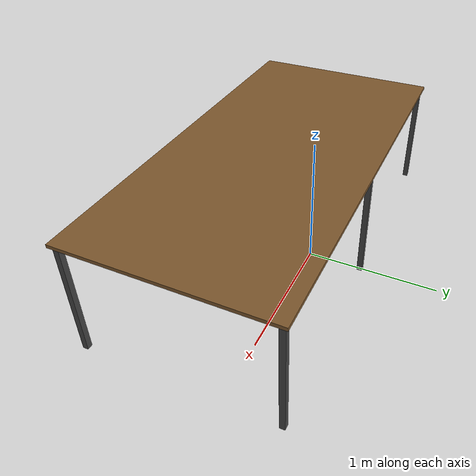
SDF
<?xml version="1.0" ?>
<sdf version="1.10">
  <!-- Assembly line table: 3.0m x 0.9m x 0.900m tall.
       Slab top surface sits at z=0.900 in model frame.
       Include in world at (0,0,0). -->
  <model name="assembly_table">
    <static>true</static>

    <!-- Table top slab: 3.0 x 0.9 x 0.025m, top at z=0.900 -->
    <link name="top">
      <pose>0 -0.3 0.8875 0 0 0</pose>
      <collision name="col">
        <geometry><box><size>3.0 1.5 0.025</size></box></geometry>
      </collision>
      <visual name="vis">
        <geometry><box><size>3.0 1.5 0.025</size></box></geometry>
        <material>
          <ambient>0.30 0.20 0.10 1</ambient>
          <diffuse>0.50 0.35 0.18 1</diffuse>
          <specular>0.05 0.05 0.05 1</specular>
        </material>
      </visual>
    </link>

    <!-- 6 legs in a 3x2 grid: x ∈ {-1.46, 0, +1.46}, y ∈ {-0.41, +0.41}
         Each leg: 0.04x0.04x0.875m, center at z=0.4375 -->
    <link name="leg_fl">
      <pose>-1.46 -1.01 0.4375 0 0 0</pose>
      <collision name="col"><geometry><box><size>0.04 0.04 0.875</size></box></geometry></collision>
      <visual name="vis">
        <geometry><box><size>0.04 0.04 0.875</size></box></geometry>
        <material><ambient>0.18 0.18 0.18 1</ambient><diffuse>0.28 0.28 0.28 1</diffuse></material>
      </visual>
    </link>
    <link name="leg_fr">
      <pose>-1.46  0.41 0.4375 0 0 0</pose>
      <collision name="col"><geometry><box><size>0.04 0.04 0.875</size></box></geometry></collision>
      <visual name="vis">
        <geometry><box><size>0.04 0.04 0.875</size></box></geometry>
        <material><ambient>0.18 0.18 0.18 1</ambient><diffuse>0.28 0.28 0.28 1</diffuse></material>
      </visual>
    </link>
    <link name="leg_ml">
      <pose>0.00 -1.01 0.4375 0 0 0</pose>
      <collision name="col"><geometry><box><size>0.04 0.04 0.875</size></box></geometry></collision>
      <visual name="vis">
        <geometry><box><size>0.04 0.04 0.875</size></box></geometry>
        <material><ambient>0.18 0.18 0.18 1</ambient><diffuse>0.28 0.28 0.28 1</diffuse></material>
      </visual>
    </link>
    <link name="leg_mr">
      <pose>0.00  0.41 0.4375 0 0 0</pose>
      <collision name="col"><geometry><box><size>0.04 0.04 0.875</size></box></geometry></collision>
      <visual name="vis">
        <geometry><box><size>0.04 0.04 0.875</size></box></geometry>
        <material><ambient>0.18 0.18 0.18 1</ambient><diffuse>0.28 0.28 0.28 1</diffuse></material>
      </visual>
    </link>
    <link name="leg_bl">
      <pose>1.46 -1.01 0.4375 0 0 0</pose>
      <collision name="col"><geometry><box><size>0.04 0.04 0.875</size></box></geometry></collision>
      <visual name="vis">
        <geometry><box><size>0.04 0.04 0.875</size></box></geometry>
        <material><ambient>0.18 0.18 0.18 1</ambient><diffuse>0.28 0.28 0.28 1</diffuse></material>
      </visual>
    </link>
    <link name="leg_br">
      <pose>1.46  0.41 0.4375 0 0 0</pose>
      <collision name="col"><geometry><box><size>0.04 0.04 0.875</size></box></geometry></collision>
      <visual name="vis">
        <geometry><box><size>0.04 0.04 0.875</size></box></geometry>
        <material><ambient>0.18 0.18 0.18 1</ambient><diffuse>0.28 0.28 0.28 1</diffuse></material>
      </visual>
    </link>

  </model>
</sdf>
